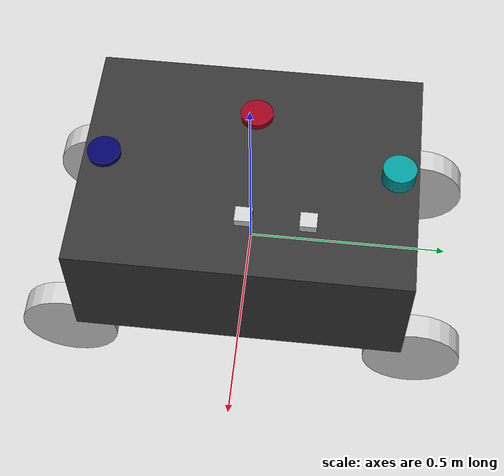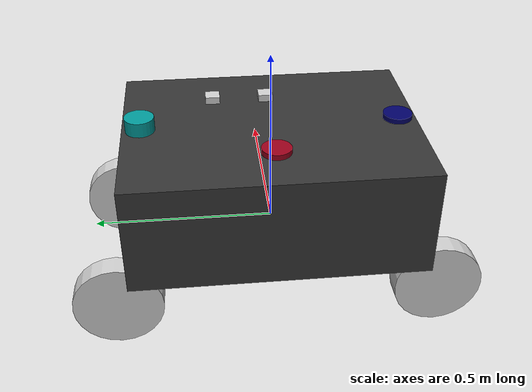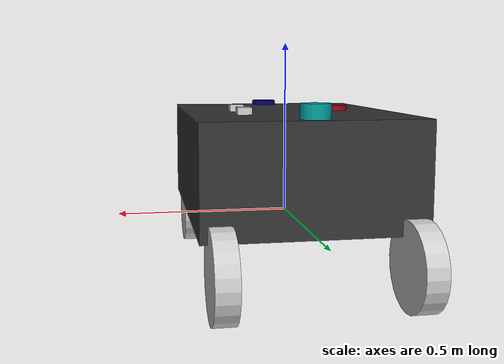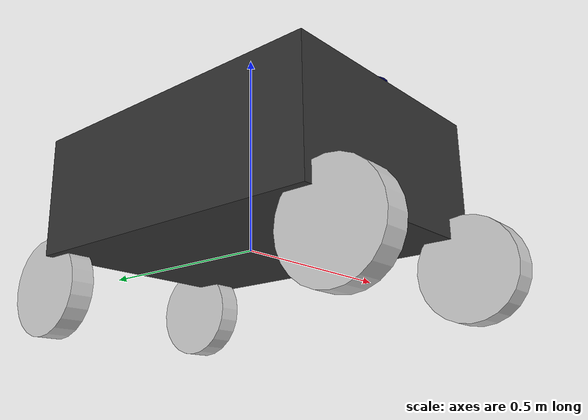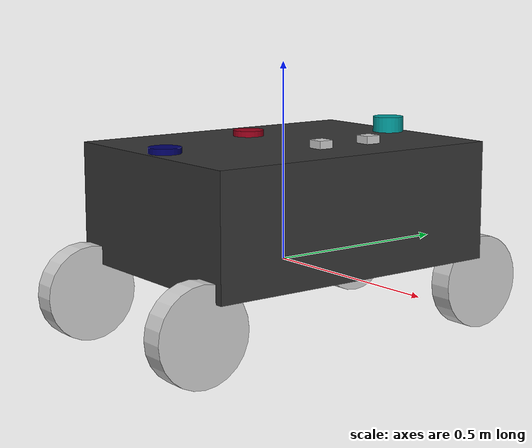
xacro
<?xml version = "1.0"?>
<robot xmlns:xacro="http://www.ros.org/wiki/xacro" name= "explorer_bot">

<xacro:property name = "chassis_length" value = "0.6"/>
<xacro:property name = "chassis_width" value = "0.8"/>
<xacro:property name = "chassis_height" value = "0.3"/>

<xacro:property name = "wheel_radius" value = "0.12"/>
<xacro:property name = "wheel_width" value = "0.06"/>
<xacro:property name = "wheel_offset" value = "-0.07"/>

<xacro:property name = "material_density" value = "2650.0"/>
<xacro:property name = "pi" value = "3.14159"/>

<xacro:property name = "chassis_mass" value = "${material_density*chassis_length*chassis_width*chassis_height}"/>
<xacro:property name = "wheel_mass" value = "${material_density*pi*wheel_radius*wheel_radius*wheel_width}"/>

<xacro:property name = "wheel_iz" value = "${0.5*wheel_mass*wheel_radius*wheel_radius}"/>
<xacro:property name = "wheel_ixy" value = "${(1/12)*wheel_mass*(3*wheel_radius*wheel_radius+wheel_width*wheel_width)}"/>

<xacro:macro name = "wheel_inertia">
<inertial>
<origin rpy = "0 0 0" xyz = "0 0 0"/>
<mass value = "${wheel_mass}"/>
<inertia ixx = "${wheel_ixy}" ixy = "0" ixz = "0" iyy = "${wheel_ixy}" iyz = "0" izz = "${wheel_iz}" />
</inertial>
</xacro:macro>

<xacro:include filename="$(find mobile_robot)/model/rover.gazebo"/>

<material name = "dark_grey">
    <color rgba = "0.2 0.2 0.2 1"/>
</material>

<material name = "silver">
    <color rgba = "0.8 0.8 0.8 1"/>
</material>

<material name = "teal">
    <color rgba = "0 0.6 0.6 1"/>
</material>

<material name = "navy">
    <color rgba = "0 0 0.4 1"/>
</material>

<material name = "burgundy">
    <color rgba = "0.6 0 0.1 1"/>
</material>

<link name = "root"/>

<joint name = "root_joint" type = "fixed">
<parent link = "root"/>
<child link = "chassis"/>
</joint>

<link name = "chassis">
    <visual>
        <geometry>
            <box size = "${chassis_length} ${chassis_width} ${chassis_height}"/>
        </geometry>
        <origin xyz = "0 0 0.15" rpy = "0 0 0"/>
        <material name = "dark_grey"/>
    </visual>

    <collision>
        <geometry>
            <box size = "${chassis_length} ${chassis_width} ${chassis_height}"/>
        </geometry>
        <origin xyz = "0 0 0.15" rpy = "0 0 0"/>
    </collision>

    <inertial>
        <origin xyz = "0 0 0.15" rpy = "0 0 0"/>
        <mass value= "${chassis_mass}"/>
        <inertia ixx = "${(1/12)*chassis_mass*(chassis_width*chassis_width+chassis_height*chassis_height)}"
        ixy = "0" ixz = "0"
        iyy = "${(1/12)*chassis_mass*(chassis_length*chassis_length+chassis_height*chassis_height)}"
        izz = "${(1/12)*chassis_mass*(chassis_width*chassis_width+chassis_length*chassis_length)}"
        iyz = "0"/>
    </inertial>
</link>

<joint name = "front_left_wheel_joint" type = "continuous">
    <parent link = "chassis"/>
    <child link = "front_left_wheel"/>
    <origin xyz = "0.25 ${-chassis_width/2-wheel_width/2} ${wheel_offset}" rpy = "0 0 0" />
    <axis xyz ="1 0 0"/>
    <limit effort = "1000" velocity = "1000"/>
    <dynamics damping = "0.8" friction = "0.8"/>
</joint>

<link name = "front_left_wheel">
    <visual>
        <geometry>
            <cylinder radius = "${wheel_radius}" length = "${wheel_width}"/>
        </geometry>
        <origin xyz = "0 0 0" rpy = "0 1.570795 0"/>
        <material name = "silver"/>
    </visual>

    <collision>
        <geometry>
            <cylinder radius = "${wheel_radius}" length = "${wheel_width}"/>
        </geometry>
        <origin xyz = "0 0 0" rpy = "0 1.570795 0"/>
    </collision>

    <xacro:wheel_inertia/>
</link>

<joint name = "front_right_wheel_joint" type = "continuous">
    <parent link = "chassis"/>
    <child link = "front_right_wheel"/>
    <origin xyz = "-0.25 ${-chassis_width/2-wheel_width/2} ${wheel_offset}" rpy = "0 0 0" />
    <axis xyz ="1 0 0"/>
    <limit effort = "1000" velocity = "1000"/>
    <dynamics damping = "0.8" friction = "0.8"/>
</joint>

<link name = "front_right_wheel">
    <visual>
        <geometry>
            <cylinder radius = "${wheel_radius}" length = "${wheel_width}"/>
        </geometry>
        <origin xyz = "0 0 0" rpy = "0 1.570795 0"/>
        <material name = "silver"/>
    </visual>

    <collision>
        <geometry>
            <cylinder radius = "${wheel_radius}" length = "${wheel_width}"/>
        </geometry>
        <origin xyz = "0 0 0" rpy = "0 1.570795 0"/>
    </collision>

    <xacro:wheel_inertia/>
</link>

<joint name = "rear_left_wheel_joint" type = "continuous">
    <parent link = "chassis"/>
    <child link = "rear_left_wheel"/>
    <origin xyz = "0.25 ${chassis_width/2+wheel_width/2} ${wheel_offset}" rpy = "0 0 0" />
    <axis xyz ="1 0 0"/>
    <limit effort = "1000" velocity = "1000"/>
    <dynamics damping = "0.8" friction = "0.8"/>
</joint>

<link name = "rear_left_wheel">
    <visual>
        <geometry>
            <cylinder radius = "${wheel_radius}" length = "${wheel_width}"/>
        </geometry>
        <origin xyz = "0 0 0" rpy = "0 1.570795 0"/>
        <material name = "silver"/>
    </visual>

    <collision>
        <geometry>
            <cylinder radius = "${wheel_radius}" length = "${wheel_width}"/>
        </geometry>
        <origin xyz = "0 0 0" rpy = "0 1.570795 0"/>
    </collision>

    <xacro:wheel_inertia/>
</link>

<joint name = "rear_right_wheel_joint" type = "continuous">
    <parent link = "chassis"/>
    <child link = "rear_right_wheel"/>
    <origin xyz = "-0.25 ${chassis_width/2+wheel_width/2} ${wheel_offset}" rpy = "0 0 0" />
    <axis xyz ="1 0 0"/>
    <limit effort = "1000" velocity = "1000"/>
    <dynamics damping = "0.8" friction = "0.8"/>
</joint>

<link name = "rear_right_wheel">
    <visual>
        <geometry>
            <cylinder radius = "${wheel_radius}" length = "${wheel_width}"/>
        </geometry>
        <origin xyz = "0 0 0" rpy = "0 1.570795 0"/>
        <material name = "silver"/>
    </visual>

    <collision>
        <geometry>
            <cylinder radius = "${wheel_radius}" length = "${wheel_width}"/>
        </geometry>
        <origin xyz = "0 0 0" rpy = "0 1.570795 0"/>
    </collision>

    <xacro:wheel_inertia/>
</link>

<!-- Sensors -->
<joint name = "lidar_mount_joint" type = "fixed">
    <parent link = "chassis"/>
    <child link = "lidar_mount"/>
    <origin xyz = "0 0.35 0.3" rpy = "0 0 0" />
</joint>

<link name="lidar_mount">
    <visual>
        <geometry>
            <cylinder radius="0.04" length="0.08"/>
        </geometry>
        <material name="teal"/>
    </visual>
    <collision>
        <geometry>
            <cylinder radius="0.04" length="0.08"/>
        </geometry>
    </collision>
    <inertial>
        <mass value="0.4"/>
        <inertia ixx="0.008" ixy="0" ixz="0" iyy="0.008" iyz="0" izz="0.008"/>
    </inertial>
</link>

<joint name = "imu_mount_joint" type = "fixed">
    <parent link = "chassis"/>
    <child link = "imu_mount"/>
    <origin xyz = "0 -0.35 0.3" rpy = "0 0 0" />
</joint>

<link name="imu_mount">
    <visual>
        <geometry>
            <cylinder radius="0.04" length="0.03"/>
        </geometry>
        <material name="navy"/>
    </visual>
    <collision>
        <geometry>
            <cylinder radius="0.04" length="0.03"/>
        </geometry>
    </collision>
    <inertial>
        <mass value="0.2"/>
        <inertia ixx="0.005" ixy="0" ixz="0" iyy="0.005" iyz="0" izz="0.005"/>
    </inertial>
</link>

<joint name = "gps_mount_joint" type = "fixed">
    <parent link = "chassis"/>
    <child link = "gps_mount"/>
    <origin xyz = "-0.15 0 0.3" rpy = "0 0 0" />
</joint>

<link name="gps_mount">
    <visual>
        <geometry>
            <cylinder radius="0.04" length="0.03"/>
        </geometry>
        <material name="burgundy"/>
    </visual>
    <collision>
        <geometry>
            <cylinder radius="0.04" length="0.03"/>
        </geometry>
    </collision>
    <inertial>
        <mass value="0.2"/>
        <inertia ixx="0.005" ixy="0" ixz="0" iyy="0.005" iyz="0" izz="0.005"/>
    </inertial>
</link>

<joint name = "camera_mount_joint" type = "fixed">
    <parent link = "chassis"/>
    <child link = "camera_mount"/>
    <origin xyz = "0.15 0 0.3" rpy = "0 0 0" />
</joint>

<link name="camera_mount">
    <visual>
        <geometry>
            <box size="0.04 0.04 0.04"/>
        </geometry>
        <material name="silver"/>
    </visual>
    <collision>
        <geometry>
            <box size="0.04 0.04 0.04"/>
        </geometry>
    </collision>
    <inertial>
        <mass value="0.2"/>
        <inertia ixx="0.005" ixy="0" ixz="0" iyy="0.005" iyz="0" izz="0.005"/>
    </inertial>
</link>

<joint name = "stereo_mount_joint" type = "fixed">
    <parent link = "chassis"/>
    <child link = "stereo_mount"/>
    <origin xyz = "0.15 0.15 0.3" rpy = "0 0 0" />
</joint>

<link name="stereo_mount">
    <visual>
        <geometry>
            <box size="0.04 0.04 0.04"/>
        </geometry>
        <material name="silver"/>
    </visual>
    <collision>
        <geometry>
            <box size="0.04 0.04 0.04"/>
        </geometry>
    </collision>
    <inertial>
        <mass value="0.2"/>
        <inertia ixx="0.005" ixy="0" ixz="0" iyy="0.005" iyz="0" izz="0.005"/>
    </inertial>
</link>

</robot>

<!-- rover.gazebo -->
<robot xmlns:xacro="http://www.ros.org/wiki/xacro">
<xacro:property name = "chassis_width" value = "0.8"/>
<xacro:property name = "wheel_radius" value = "0.12"/>
<xacro:property name = "wheel_width" value = "0.06"/>

<!-- Chassis properties -->
<gazebo reference = "chassis">
<mu1>0.25</mu1>
<mu2>0.25</mu2>
<material>Gazebo/DarkGrey</material>
</gazebo>

<!-- Wheel properties -->
<gazebo reference = "front_left_wheel">
<mu1>0.25</mu1>
<mu2>0.25</mu2>
<material>Gazebo/Silver</material>
</gazebo>

<gazebo reference = "front_right_wheel">
<mu1>0.25</mu1>
<mu2>0.25</mu2>
<material>Gazebo/Silver</material>
</gazebo>

<gazebo reference = "rear_left_wheel">
<mu1>0.25</mu1>
<mu2>0.25</mu2>
<material>Gazebo/Silver</material>
</gazebo>

<gazebo reference = "rear_right_wheel">
<mu1>0.25</mu1>
<mu2>0.25</mu2>
<material>Gazebo/Silver</material>
</gazebo>

<!-- Sensor mount properties -->
<gazebo reference = "lidar_mount">
<mu1>0.25</mu1>
<mu2>0.25</mu2>
<material>Gazebo/Teal</material>

<sensor type="ray" name="lidar_sensor">
    <pose>0 0 0 0 0 0</pose>
    <visualize>true</visualize>
    <update_rate>30</update_rate>
    <ray>
        <scan>
            <horizontal>
                <samples>960</samples>
                <resolution>1</resolution>
                <min_angle>-3.141592</min_angle>
                <max_angle>3.141592</max_angle>
            </horizontal>
        </scan>
        <range>
            <min>0.3</min>
            <max>25.0</max>
            <resolution>0.015</resolution>
        </range>
        <noise>
            <type>gaussian</type>
            <mean>0.0</mean>
            <stddev>0.015</stddev>
        </noise>
    </ray>
    <plugin name="lidar_controller" filename="libgazebo_ros_laser.so">
        <topicName>/explorer/lidar/scan</topicName>
        <frameName>lidar_mount</frameName>
    </plugin>
</sensor>
</gazebo>

<gazebo reference = "imu_mount">
<mu1>0.25</mu1>
<mu2>0.25</mu2>
<material>Gazebo/Navy</material>

<sensor name="imu_sensor" type="imu">
    <pose>0 0 0 0 0 0</pose>
    <plugin name="imu_controller" filename="libgazebo_ros_imu.so">
        <ros>
            <namespace>/explorer</namespace>
        </ros>
        <update_rate>200</update_rate>
        <gaussian_noise>0.008</gaussian_noise>
        <always_on>true</always_on>
        <visualize>true</visualize>
        <frame_name>imu_mount</frame_name>
    </plugin>
</sensor>
</gazebo>

<gazebo reference = "gps_mount">
<mu1>0.25</mu1>
<mu2>0.25</mu2>
<material>Gazebo/Orange</material>

<sensor name="gps_sensor" type="gps">
    <pose>0 0 0 0 0 0</pose>
    <plugin name="gps_controller" filename="libgazebo_ros_gps.so">
        <ros>
            <namespace>/explorer</namespace>
        </ros>
        <update_rate>10</update_rate>
        <frame_name>gps_mount</frame_name>
        <topicName>gps/fix</topicName>
    </plugin>
</sensor>
</gazebo>

<gazebo reference = "camera_mount">
<mu1>0.25</mu1>
<mu2>0.25</mu2>
<material>Gazebo/Navy</material>

<sensor type="camera" name="camera_sensor">
    <pose>0 0 0 0 0 0</pose>
    <camera>
        <horizontal_fov>1.2</horizontal_fov>
        <image>
            <width>1280</width>
            <height>720</height>
            <format>R8G8B8</format>
        </image>
        <clip>
            <near>0.08</near>
            <far>150</far>
        </clip>
    </camera>
    <plugin name="camera_controller" filename="libgazebo_ros_camera.so">
        <ros>
            <namespace>/explorer</namespace>
        </ros>
        <frame_name>camera_mount</frame_name>
        <hack_baseline>0.07</hack_baseline>
    </plugin>
</sensor>
</gazebo>

<gazebo reference = "stereo_mount">
<mu1>0.25</mu1>
<mu2>0.25</mu2>
<material>Gazebo/Navy</material>

<sensor type="depth" name="stereo_camera">
    <pose>0 0 0 0 0 0</pose>
    <camera>
        <horizontal_fov>1.047</horizontal_fov>
        <image>
            <width>640</width>
            <height>480</height>
            <format>B8G8R8</format>
        </image>
        <clip>
            <near>0.05</near>
            <far>10.0</far>
        </clip>
    </camera>
    <plugin name="stereo_controller" filename="libgazebo_ros_camera.so">
        <ros>
            <namespace>/explorer</namespace>
            <remapping>stereo_camera/image_raw:=color/image_raw</remapping>
            <remapping>stereo_camera/depth/image_raw:=depth/image_rect_raw</remapping>
            <remapping>stereo_camera/camera_info:=camera_info</remapping>
            <remapping>stereo_camera/depth/camera_info:=depth/camera_info</remapping>
            <remapping>stereo_camera/points:=depth/points</remapping>
        </ros>
        <frame_name>stereo_mount</frame_name>
        <hack_baseline>0.07</hack_baseline>
        <min_depth>0.05</min_depth>
        <max_depth>10.0</max_depth>
    </plugin>
</sensor>
</gazebo>

<!-- Differential drive controller -->
<gazebo>
    <plugin name='skid_steer_controller' filename='libgazebo_ros_diff_drive.so'>
        <num_wheel_pairs>2</num_wheel_pairs>

        <!-- Front wheel pair -->
        <left_joint>front_left_wheel_joint</left_joint>
        <right_joint>front_right_wheel_joint</right_joint>
        <wheel_separation>0.55</wheel_separation>
        <wheel_diameter>0.24</wheel_diameter>

        <!-- Rear wheel pair -->
        <left_joint>rear_left_wheel_joint</left_joint>
        <right_joint>rear_right_wheel_joint</right_joint>
        <wheel_separation>0.55</wheel_separation>
        <wheel_diameter>0.24</wheel_diameter>

        <!-- Control parameters -->
        <max_wheel_torque>15</max_wheel_torque>
        <max_wheel_acceleration>1.5</max_wheel_acceleration>

        <!-- Output configuration -->
        <publish_odom>true</publish_odom>
        <publish_odom_tf>true</publish_odom_tf>
        <publish_wheel_tf>true</publish_wheel_tf>

        <odometry_frame>odom</odometry_frame>
        <robot_base_frame>chassis</robot_base_frame>

        <!-- ROS2 parameters -->
        <ros>
            <namespace>/explorer</namespace>
        </ros>

        <update_rate>50</update_rate>
    </plugin>
</gazebo>

</robot>
